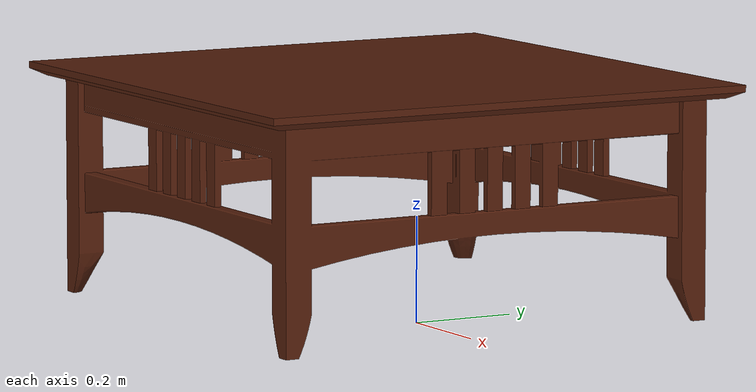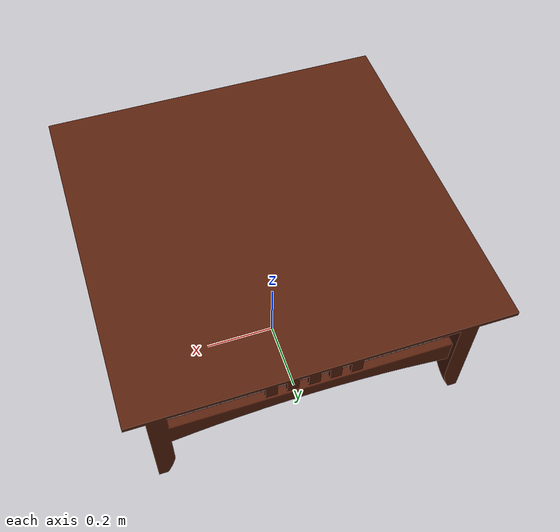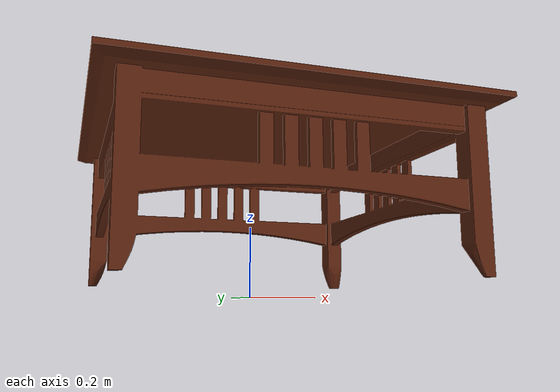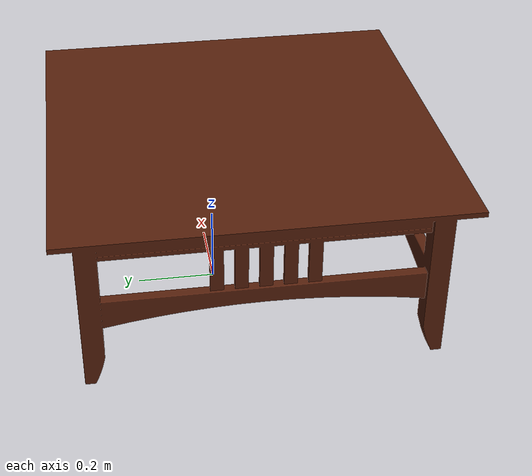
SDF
<?xml version="1.0" ?>
<sdf version="1.5">
  <model name="Table">
    <static>true</static>
    <link name="link">
      <pose>0 0 0.04 0 0 0</pose>
      <inertial>
        <mass>13</mass>
        <inertia>
          <ixx>0.9438</ixx>
          <ixy>0</ixy>
          <ixz>0</ixz>
          <iyy>0.9438</iyy>
          <iyz>0</iyz>
          <izz>0.9438</izz>
        </inertia>
      </inertial>

      <collision name="collision">
        <geometry>
          <mesh>
	    <uri>model://Table/meshes/Table.dae</uri>
	  </mesh>
        </geometry>
      </collision>

      <visual name="visual">
        <geometry>
          <mesh>
	    <uri>model://Table/meshes/Table.dae</uri>
	  </mesh>
        </geometry>
      </visual>

    </link>
  </model>
</sdf>
